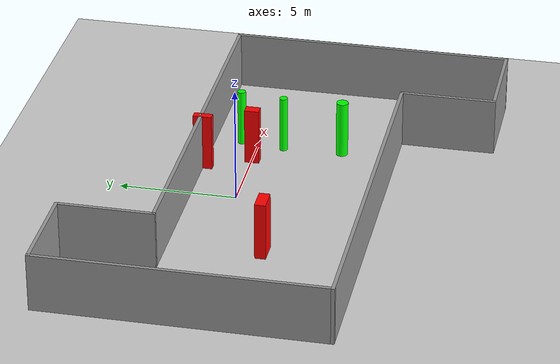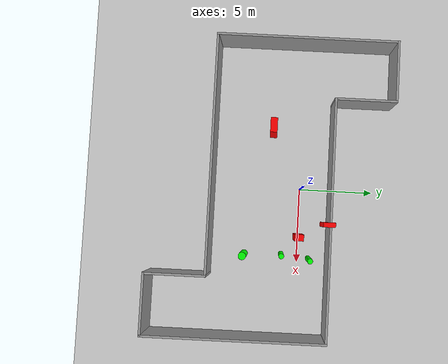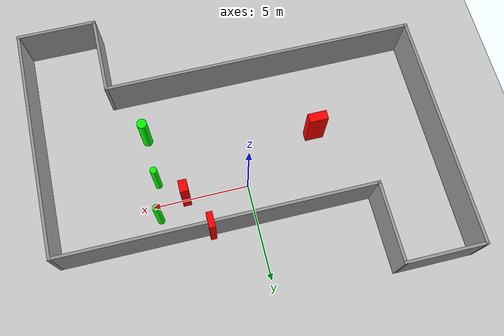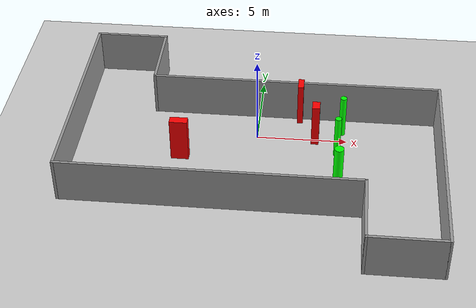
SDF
<sdf version="1.7">
 <world name="default">
  <light name="sun" type="directional">
   <pose>0 0 10 0 -0 0</pose>
   <diffuse>0.8 0.8 0.8 1</diffuse>
   <specular>0.2 0.2 0.2 1</specular>
   <attenuation>
    <range>1000</range>
    <constant>0.9</constant>
    <linear>0.01</linear>
    <quadratic>0.001</quadratic>
   </attenuation>
   <direction>-0.5 0.1 -0.9</direction>
   <spot><inner_angle>0</inner_angle><outer_angle>0</outer_angle><falloff>0</falloff></spot>
  </light>
  <model name="ground_plane">
   <static>1</static>
   <link name="link">
    <collision name="collision">
     <geometry><plane><normal>0 0 1</normal><size>100 100</size></plane></geometry>
     <surface>
      <contact><collide_bitmask>65535</collide_bitmask></contact>
      <friction><ode><mu>100</mu><mu2>50</mu2></ode></friction>
     </surface>
    </collision>
    <visual name="visual">
     <cast_shadows>0</cast_shadows>
     <geometry><plane><normal>0 0 1</normal><size>100 100</size></plane></geometry>
     <material>
      <script><uri>file://media/materials/scripts/gazebo.material</uri><name>Gazebo/Grey</name></script>
     </material>
    </visual>
   </link>
  </model>
  <gravity>0 0 -9.8</gravity>
  <magnetic_field>6e-06 2.3e-05 -4.2e-05</magnetic_field>
  <atmosphere type="adiabatic"/>
  <physics type="ode">
   <max_step_size>0.001</max_step_size>
   <real_time_factor>1</real_time_factor>
   <real_time_update_rate>1000</real_time_update_rate>
  </physics>
  <scene><ambient>0.4 0.4 0.4 1</ambient><background>0.7 0.7 0.7 1</background><shadows>1</shadows></scene>
  <spherical_coordinates>
   <surface_model>EARTH_WGS84</surface_model>
   <latitude_deg>0</latitude_deg>
   <longitude_deg>0</longitude_deg>
   <elevation>0</elevation>
   <heading_deg>0</heading_deg>
  </spherical_coordinates>
  <model name="my_base_walls">
   <link name="Wall_13">
    <collision name="Wall_13_Collision">
     <geometry><box><size>12.15 0.15 2.5</size></box></geometry>
     <pose>0 0 1.25 0 -0 0</pose>
    </collision>
    <visual name="Wall_13_Visual">
     <pose>0 0 1.25 0 -0 0</pose>
     <geometry><box><size>12.15 0.15 2.5</size></box></geometry>
     <material>
      <script><uri>file://media/materials/scripts/gazebo.material</uri><name>Gazebo/Grey</name></script>
      <ambient>1 1 1 1</ambient>
     </material>
     <meta><layer>0</layer></meta>
    </visual>
    <pose>10 -2 0 0 -0 1.5708</pose>
   </link>
   <link name="Wall_15">
    <collision name="Wall_15_Collision">
     <geometry><box><size>16.15 0.15 2.5</size></box></geometry>
     <pose>0 0 1.25 0 -0 0</pose>
    </collision>
    <visual name="Wall_15_Visual">
     <pose>0 0 1.25 0 -0 0</pose>
     <geometry><box><size>16.15 0.15 2.5</size></box></geometry>
     <material>
      <script><uri>file://media/materials/scripts/gazebo.material</uri><name>Gazebo/Grey</name></script>
      <ambient>1 1 1 1</ambient>
     </material>
     <meta><layer>0</layer></meta>
    </visual>
    <pose>2 4 0 0 -0 3.14159</pose>
   </link>
   <link name="Wall_17">
    <collision name="Wall_17_Collision">
     <geometry><box><size>4.15 0.15 2.5</size></box></geometry>
     <pose>0 0 1.25 0 -0 0</pose>
    </collision>
    <visual name="Wall_17_Visual">
     <pose>0 0 1.25 0 -0 0</pose>
     <geometry><box><size>4.15 0.15 2.5</size></box></geometry>
     <material>
      <script><uri>file://media/materials/scripts/gazebo.material</uri><name>Gazebo/Grey</name></script>
      <ambient>1 1 1 1</ambient>
     </material>
     <meta><layer>0</layer></meta>
    </visual>
    <pose>6 -6 0 0 -0 -1.5708</pose>
   </link>
   <link name="Wall_19">
    <collision name="Wall_19_Collision">
     <geometry><box><size>12.15 0.15 2.5</size></box></geometry>
     <pose>0 0 1.25 0 -0 0</pose>
    </collision>
    <visual name="Wall_19_Visual">
     <pose>0 0 1.25 0 -0 0</pose>
     <geometry><box><size>12.15 0.15 2.5</size></box></geometry>
     <material>
      <script><uri>file://media/materials/scripts/gazebo.material</uri><name>Gazebo/Grey</name></script>
      <ambient>1 1 1 1</ambient>
     </material>
     <meta><layer>0</layer></meta>
    </visual>
    <pose>-10 2 0 0 -0 1.5708</pose>
   </link>
   <link name="Wall_21">
    <collision name="Wall_21_Collision">
     <geometry><box><size>4.15 0.15 2.5</size></box></geometry>
     <pose>0 0 1.25 0 -0 0</pose>
    </collision>
    <visual name="Wall_21_Visual">
     <pose>0 0 1.25 0 -0 0</pose>
     <geometry><box><size>4.15 0.15 2.5</size></box></geometry>
     <material>
      <script><uri>file://media/materials/scripts/gazebo.material</uri><name>Gazebo/Grey</name></script>
      <ambient>1 1 1 1</ambient>
     </material>
     <meta><layer>0</layer></meta>
    </visual>
    <pose>-8 8 0 0 -0 0</pose>
   </link>
   <link name="Wall_23">
    <collision name="Wall_23_Collision">
     <geometry><box><size>4.15 0.15 2.5</size></box></geometry>
     <pose>0 0 1.25 0 -0 0</pose>
    </collision>
    <visual name="Wall_23_Visual">
     <pose>0 0 1.25 0 -0 0</pose>
     <geometry><box><size>4.15 0.15 2.5</size></box></geometry>
     <material>
      <script><uri>file://media/materials/scripts/gazebo.material</uri><name>Gazebo/Grey</name></script>
      <ambient>1 1 1 1</ambient>
     </material>
     <meta><layer>0</layer></meta>
    </visual>
    <pose>-6 6 0 0 -0 -1.5708</pose>
   </link>
   <link name="Wall_25">
    <collision name="Wall_25_Collision">
     <geometry><box><size>4.15 0.15 2.5</size></box></geometry>
     <pose>0 0 1.25 0 -0 0</pose>
    </collision>
    <visual name="Wall_25_Visual">
     <pose>0 0 1.25 0 -0 0</pose>
     <geometry><box><size>4.15 0.15 2.5</size></box></geometry>
     <material>
      <script><uri>file://media/materials/scripts/gazebo.material</uri><name>Gazebo/Grey</name></script>
      <ambient>1 1 1 1</ambient>
     </material>
     <meta><layer>0</layer></meta>
    </visual>
    <pose>8 -8 0 0 -0 0</pose>
   </link>
   <link name="Wall_9">
    <collision name="Wall_9_Collision">
     <geometry><box><size>16.15 0.15 2.5</size></box></geometry>
     <pose>0 0 1.25 0 -0 0</pose>
    </collision>
    <visual name="Wall_9_Visual">
     <pose>0 0 1.25 0 -0 0</pose>
     <geometry><box><size>16.15 0.15 2.5</size></box></geometry>
     <material>
      <script><uri>file://media/materials/scripts/gazebo.material</uri><name>Gazebo/Grey</name></script>
      <ambient>1 1 1 1</ambient>
     </material>
     <meta><layer>0</layer></meta>
    </visual>
    <pose>-2 -4 0 0 -0 3.14159</pose>
   </link>
   <static>1</static>
   <pose>-0 -2 0 0 -0 0</pose>
  </model>
  <model name="cylinder1">
   <static>1</static>
   <link name="link">
    <inertial>
     <mass>1</mass>
     <inertia><ixx>0.5</ixx><ixy>0</ixy><ixz>0</ixz><iyy>0.5</iyy><iyz>0</iyz><izz>1</izz></inertia>
    </inertial>
    <collision name="collision">
     <geometry><cylinder><radius>0.17615675761740687</radius><length>2.5</length></cylinder></geometry>
    </collision>
    <visual name="visual">
     <geometry><cylinder><radius>0.17615675761740687</radius><length>2.5</length></cylinder></geometry>
     <material>
      <ambient>0 1 0 1</ambient>
      <diffuse>0 1 0 1</diffuse>
      <specular>0.1 0.1 0.1 1</specular>
      <emissive>0 0 0 0</emissive>
     </material>
    </visual>
   </link>
   <pose>4.483828787979682 -1.1233179202993604 1.25 0 0 0</pose>
  </model>
  <model name="cylinder2">
   <static>1</static>
   <link name="link">
    <inertial>
     <mass>1</mass>
     <inertia><ixx>0.5</ixx><ixy>0</ixy><ixz>0</ixz><iyy>0.5</iyy><iyz>0</iyz><izz>1</izz></inertia>
    </inertial>
    <collision name="collision">
     <geometry><cylinder><radius>0.2551794261427661</radius><length>2.5</length></cylinder></geometry>
    </collision>
    <visual name="visual">
     <geometry><cylinder><radius>0.2551794261427661</radius><length>2.5</length></cylinder></geometry>
     <material>
      <ambient>0 1 0 1</ambient>
      <diffuse>0 1 0 1</diffuse>
      <specular>0.1 0.1 0.1 1</specular>
      <emissive>0 0 0 0</emissive>
     </material>
    </visual>
   </link>
   <pose>4.588303330994453 -3.669002412594387 1.25 0 0 0</pose>
  </model>
  <model name="cylinder3">
   <static>1</static>
   <link name="link">
    <inertial>
     <mass>1</mass>
     <inertia><ixx>0.5</ixx><ixy>0</ixy><ixz>0</ixz><iyy>0.5</iyy><iyz>0</iyz><izz>1</izz></inertia>
    </inertial>
    <collision name="collision">
     <geometry><cylinder><radius>0.1767431922826615</radius><length>2.5</length></cylinder></geometry>
    </collision>
    <visual name="visual">
     <geometry><cylinder><radius>0.1767431922826615</radius><length>2.5</length></cylinder></geometry>
     <material>
      <ambient>0 1 0 1</ambient>
      <diffuse>0 1 0 1</diffuse>
      <specular>0.1 0.1 0.1 1</specular>
      <emissive>0 0 0 0</emissive>
     </material>
    </visual>
   </link>
   <pose>4.720436972796502 0.7604791220647673 1.25 0 0 0</pose>
  </model>
  <model name="box1">
   <static>1</static>
   <link name="link">
    <inertial>
     <mass>1</mass>
     <inertia><ixx>0.083</ixx><ixy>0</ixy><ixz>0</ixz><iyy>0.083</iyy><iyz>0</iyz><izz>0.083</izz></inertia>
    </inertial>
    <collision name="collision">
     <geometry><box><size>0.42075405840241437 0.6145007588245686 2.5</size></box></geometry>
    </collision>
    <visual name="visual">
     <geometry><box><size>0.42075405840241437 0.6145007588245686 2.5</size></box></geometry>
     <material>
      <ambient>1 0 0 1</ambient>
      <diffuse>1 0 0 1</diffuse>
      <specular>0.1 0.1 0.1 1</specular>
      <emissive>0 0 0 0</emissive>
     </material>
    </visual>
    <sensor name="my_contact" type="contact">
     <contact><collision>box_collision</collision><topic>__default_topic__</topic></contact>
    </sensor>
   </link>
   <pose>3.2416866076995596 -0.02327551594401367 1.25 0 0 0</pose>
  </model>
  <model name="box2">
   <static>1</static>
   <link name="link">
    <inertial>
     <mass>1</mass>
     <inertia><ixx>0.083</ixx><ixy>0</ixy><ixz>0</ixz><iyy>0.083</iyy><iyz>0</iyz><izz>0.083</izz></inertia>
    </inertial>
    <collision name="collision">
     <geometry><box><size>0.3149096207903084 0.8017542466133627 2.5</size></box></geometry>
    </collision>
    <visual name="visual">
     <geometry><box><size>0.3149096207903084 0.8017542466133627 2.5</size></box></geometry>
     <material>
      <ambient>1 0 0 1</ambient>
      <diffuse>1 0 0 1</diffuse>
      <specular>0.1 0.1 0.1 1</specular>
      <emissive>0 0 0 0</emissive>
     </material>
    </visual>
    <sensor name="my_contact" type="contact">
     <contact><collision>box_collision</collision><topic>__default_topic__</topic></contact>
    </sensor>
   </link>
   <pose>2.311219764910865 1.9212187220686756 1.25 0 0 0</pose>
  </model>
  <model name="box3">
   <static>1</static>
   <link name="link">
    <inertial>
     <mass>1</mass>
     <inertia><ixx>0.083</ixx><ixy>0</ixy><ixz>0</ixz><iyy>0.083</iyy><iyz>0</iyz><izz>0.083</izz></inertia>
    </inertial>
    <collision name="collision">
     <geometry><box><size>0.9686459452462368 0.46150389388900737 2.5</size></box></geometry>
    </collision>
    <visual name="visual">
     <geometry><box><size>0.9686459452462368 0.46150389388900737 2.5</size></box></geometry>
     <material>
      <ambient>1 0 0 1</ambient>
      <diffuse>1 0 0 1</diffuse>
      <specular>0.1 0.1 0.1 1</specular>
      <emissive>0 0 0 0</emissive>
     </material>
    </visual>
    <sensor name="my_contact" type="contact">
     <contact><collision>box_collision</collision><topic>__default_topic__</topic></contact>
    </sensor>
   </link>
   <pose>-4.0738583099660906 -2.0034293331711517 1.25 0 0 0</pose>
  </model>
 </world>
</sdf>
